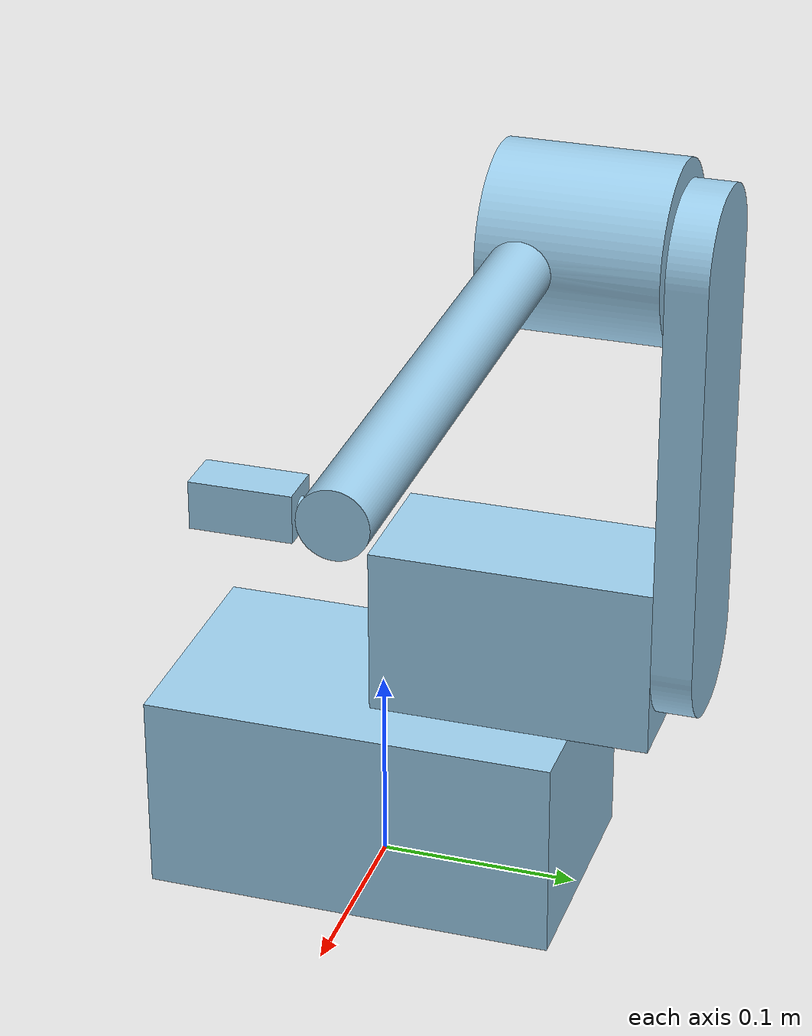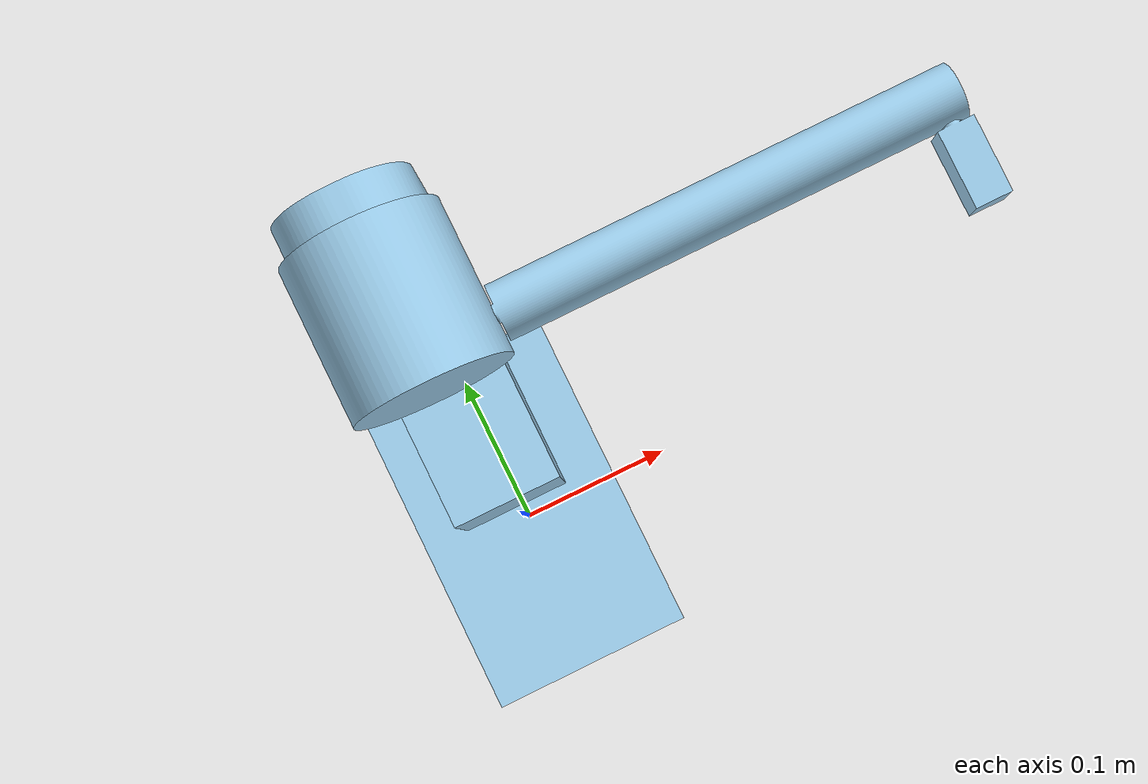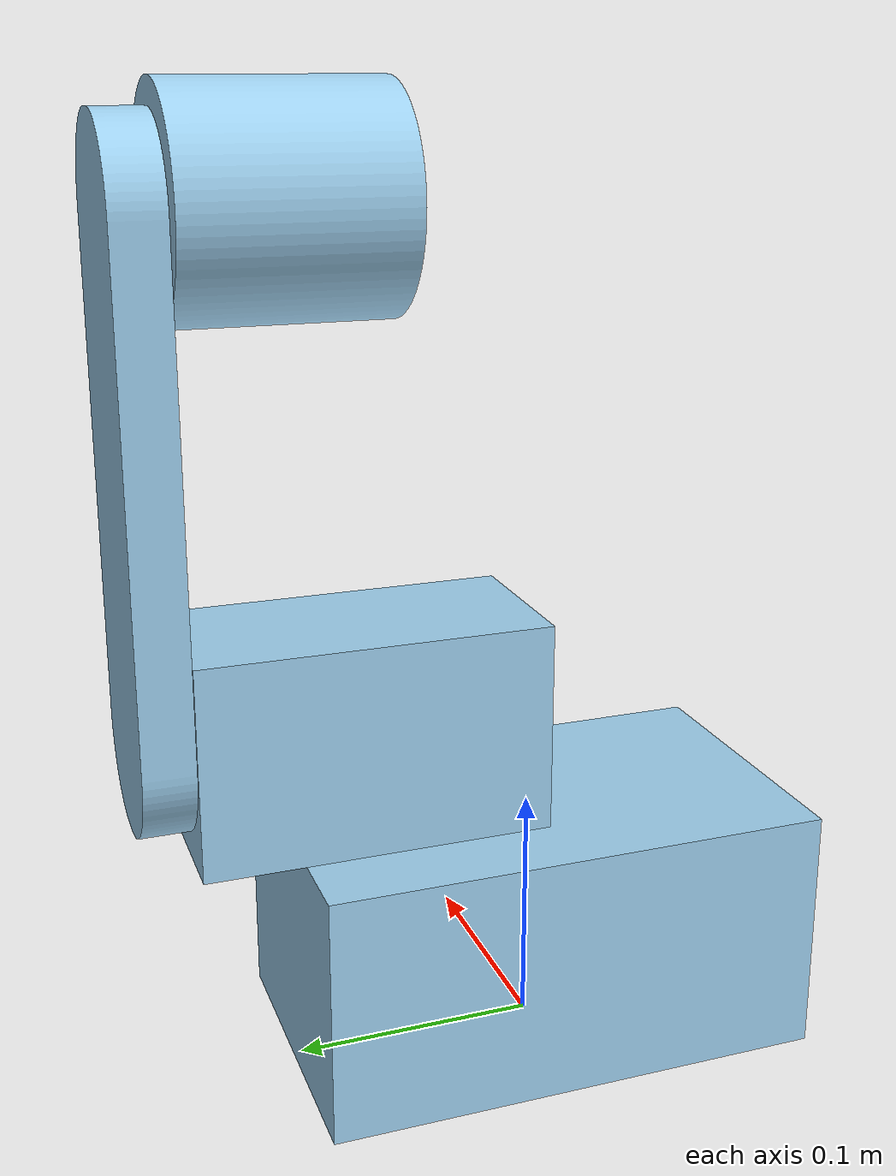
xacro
<?xml version="1.0"?>
<robot xmlns:xacro="http://www.ros.org/wiki/xacro" name="robot_description">
    <xacro:arg name="initial_positions_file" default="initial_positions.yaml" />

    <!-- Import robot_description urdf file -->
    <xacro:include filename="$(find robot_description)/urdf/robot.urdf" />

    <!-- Import control_xacro -->
    <xacro:include filename="robot_description.ros2_control.xacro" />

    <xacro:robot_description_ros2_control name="FakeSystem" initial_positions_file="$(arg initial_positions_file)"/>

    <gazebo>
        <plugin name="ign_ros2_control::IgnitionROS2ControlPlugin" filename="libign_ros2_control-system.so">
        <!-- Optional configuration (e.g., control period) -->
        <parameters>$(find simple_moveit)/config/ros2_controllers.yaml</parameters>
        </plugin>
    </gazebo>

</robot>

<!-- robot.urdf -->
<!-- Generated using onshape-to-robot -->
<!-- Onshape https://cad.onshape.com/documents/95fd851c76f3f6bde8c085de/w/d547567e27705c867ac23e03/e/46c7eb3c59f888e21815eca3 -->
<robot name="robot_description">
  <!-- Link base -->
  <link name="base">
    <inertial>
      <origin xyz="3.03802e-22 -2.49325e-05 0.0512803" rpy="0 0 0"/>
      <mass value="8"/>
      <inertia ixx="0.03558" ixy="0" ixz="0" iyy="0.0174346" iyz="9.23893e-06" izz="0.0389875"/>
    </inertial>
    <!-- Part base -->
    <visual>
      <origin xyz="0 0 0.1026" rpy="3.14159 -0 1.5708"/>
      <geometry>
        <mesh filename="package://robot_description/urdf/assets/base.stl"/>
      </geometry>
      <material name="base_material">
        <color rgba="0.615686 0.811765 0.929412 1"/>
      </material>
    </visual>
    <collision>
      <origin xyz="0 0 0.1026" rpy="3.14159 -0 1.5708"/>
      <geometry>
        <mesh filename="package://robot_description/urdf/assets/base.stl"/>
      </geometry>
    </collision>
  </link>
  <!-- Link link_j1 -->
  <link name="link_j1">
    <inertial>
      <origin xyz="0.0149002 -2.26837e-18 -0.0425285" rpy="0 0 0"/>
      <mass value="2.59"/>
      <inertia ixx="0.00254072" ixy="0" ixz="2.44349e-06" iyy="0.00578583" iyz="0" izz="0.00519265"/>
    </inertial>
    <!-- Part link_j1 -->
    <visual>
      <origin xyz="0.015 2.23158e-19 0" rpy="3.14159 -0 0"/>
      <geometry>
        <mesh filename="package://robot_description/urdf/assets/link_j1.stl"/>
      </geometry>
      <material name="link_j1_material">
        <color rgba="0.615686 0.811765 0.929412 1"/>
      </material>
    </visual>
    <collision>
      <origin xyz="0.015 2.23158e-19 0" rpy="3.14159 -0 0"/>
      <geometry>
        <mesh filename="package://robot_description/urdf/assets/link_j1.stl"/>
      </geometry>
    </collision>
  </link>
  <!-- Link link_j2 -->
  <link name="link_j2">
    <inertial>
      <origin xyz="0.107431 1.01288e-17 -0.00989273" rpy="0 0 0"/>
      <mass value="1.75"/>
      <inertia ixx="0.000858613" ixy="1.18735e-32" ixz="2.5528e-05" iyy="0.00951707" iyz="1.42479e-34" izz="0.0102488"/>
    </inertial>
    <!-- Part link_j2 -->
    <visual>
      <origin xyz="0 -3.06162e-19 -0.02" rpy="1.2326e-32 1.2326e-32 9.86076e-31"/>
      <geometry>
        <mesh filename="package://robot_description/urdf/assets/link_j2.stl"/>
      </geometry>
      <material name="link_j2_material">
        <color rgba="0.615686 0.811765 0.929412 1"/>
      </material>
    </visual>
    <collision>
      <origin xyz="0 -3.06162e-19 -0.02" rpy="1.2326e-32 1.2326e-32 9.86076e-31"/>
      <geometry>
        <mesh filename="package://robot_description/urdf/assets/link_j2.stl"/>
      </geometry>
    </collision>
  </link>
  <!-- Link link_j3 -->
  <link name="link_j3">
    <inertial>
      <origin xyz="-8.5428e-05 -2.37945e-09 -0.0425066" rpy="0 0 0"/>
      <mass value="0.472"/>
      <inertia ixx="0.00050765" ixy="3.58382e-11" ixz="-8.78892e-07" iyy="0.000506109" iyz="-2.73616e-11" izz="0.000439176"/>
    </inertial>
    <!-- Part link_j3 -->
    <visual>
      <origin xyz="-2.36658e-30 0 0.01" rpy="3.14159 1.47911e-31 1.97215e-31"/>
      <geometry>
        <mesh filename="package://robot_description/urdf/assets/link_j3.stl"/>
      </geometry>
      <material name="link_j3_material">
        <color rgba="0.615686 0.811765 0.929412 1"/>
      </material>
    </visual>
    <collision>
      <origin xyz="-2.36658e-30 0 0.01" rpy="3.14159 1.47911e-31 1.97215e-31"/>
      <geometry>
        <mesh filename="package://robot_description/urdf/assets/link_j3.stl"/>
      </geometry>
    </collision>
  </link>
  <!-- Link link_j4 -->
  <link name="link_j4">
    <inertial>
      <origin xyz="-4.61497e-10 -6.09313e-05 0.125272" rpy="0 0 0"/>
      <mass value="0.349"/>
      <inertia ixx="0.00185365" ixy="1.88523e-12" ixz="-6.23153e-12" iyy="0.00185386" iyz="2.49591e-06" izz="3.91041e-05"/>
    </inertial>
    <!-- Part link_j4 -->
    <visual>
      <origin xyz="-5.55112e-17 1.38778e-17 -0.009" rpy="-1.5708 -1.77636e-15 1.5708"/>
      <geometry>
        <mesh filename="package://robot_description/urdf/assets/link_j4.stl"/>
      </geometry>
      <material name="link_j4_material">
        <color rgba="0.615686 0.811765 0.929412 1"/>
      </material>
    </visual>
    <collision>
      <origin xyz="-5.55112e-17 1.38778e-17 -0.009" rpy="-1.5708 -1.77636e-15 1.5708"/>
      <geometry>
        <mesh filename="package://robot_description/urdf/assets/link_j4.stl"/>
      </geometry>
    </collision>
  </link>
  <!-- Link link_j5 -->
  <link name="link_j5">
    <inertial>
      <origin xyz="-7.86519e-05 4.46002e-05 -0.0198258" rpy="0 0 0"/>
      <mass value="0.218"/>
      <inertia ixx="4.41782e-05" ixy="-7.36866e-08" ixz="-2.14607e-08" iyy="4.40886e-05" iyz="1.42459e-08" izz="1.3973e-05"/>
    </inertial>
    <!-- Part link_j5 -->
    <visual>
      <origin xyz="0 0 0.01" rpy="1.5708 -0 0"/>
      <geometry>
        <mesh filename="package://robot_description/urdf/assets/link_j5.stl"/>
      </geometry>
      <material name="link_j5_material">
        <color rgba="0.615686 0.811765 0.929412 1"/>
      </material>
    </visual>
    <collision>
      <origin xyz="0 0 0.01" rpy="1.5708 -0 0"/>
      <geometry>
        <mesh filename="package://robot_description/urdf/assets/link_j5.stl"/>
      </geometry>
    </collision>
  </link>
  <!-- Joint from link_j4 to link_j5 -->
  <joint name="j5" type="revolute">
    <origin xyz="1.11022e-16 0.0160737 0.242638" rpy="-1.5708 -1.66533e-15 3.14159"/>
    <parent link="link_j4"/>
    <child link="link_j5"/>
    <axis xyz="0 0 1"/>
    <limit effort="10" velocity="10" lower="-3.141592653589793" upper="3.141592653589793"/>
  </joint>
  <!-- Joint from link_j3 to link_j4 -->
  <joint name="j4" type="revolute">
    <origin xyz="0.0432651 0 -0.0643" rpy="-1.5708 -3.69779e-32 -1.5708"/>
    <parent link="link_j3"/>
    <child link="link_j4"/>
    <axis xyz="0 0 1"/>
    <limit effort="10" velocity="10" lower="-3.141592653589793" upper="3.141592653589793"/>
  </joint>
  <!-- Joint from link_j2 to link_j3 -->
  <joint name="j3" type="revolute">
    <origin xyz="0.2086 1.27555e-17 0.001" rpy="-3.14159 1.11022e-15 -1.5708"/>
    <parent link="link_j2"/>
    <child link="link_j3"/>
    <axis xyz="0 0 1"/>
    <limit effort="10" velocity="10" lower="-3.141592653589793" upper="3.141592653589793"/>
  </joint>
  <!-- Joint from link_j1 to link_j2 -->
  <joint name="j2" type="revolute">
    <origin xyz="0.086 2.23158e-19 -0.03632" rpy="-3.14159 1.5708 0"/>
    <parent link="link_j1"/>
    <child link="link_j2"/>
    <axis xyz="0 0 1"/>
    <limit effort="10" velocity="10" lower="-3.141592653589793" upper="3.141592653589793"/>
  </joint>
  <!-- Joint from base to link_j1 -->
  <joint name="j1" type="revolute">
    <origin xyz="-9.50428e-19 0.0585 0.1036" rpy="3.14159 -0 1.5708"/>
    <parent link="base"/>
    <child link="link_j1"/>
    <axis xyz="0 0 1"/>
    <limit effort="10" velocity="10" lower="-3.141592653589793" upper="3.141592653589793"/>
  </joint>
</robot>
